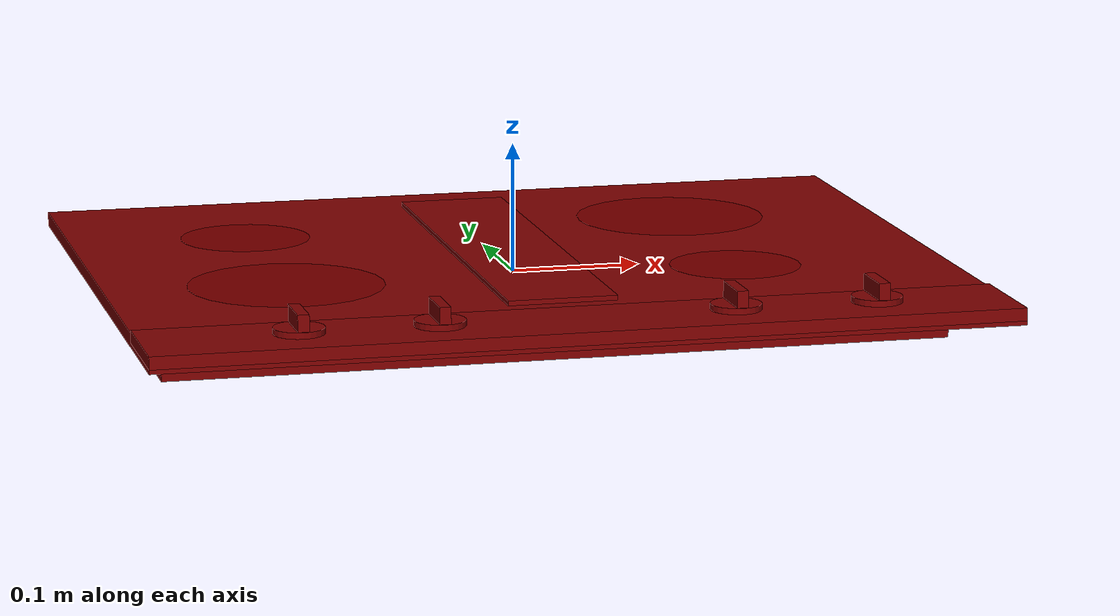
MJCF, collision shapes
<?xml version='1.0' encoding='UTF-8'?>
<mujoco model="model">
  <option timestep="0.002" gravity="0.0 0.0 -9.81"/>
  <compiler angle="radian"/>
  <asset>
    <mesh file="visuals/knob_front_left.obj" name="knob_front_left_vis"/>
    <mesh file="visuals/knob_front_right.obj" name="knob_front_right_vis"/>
    <mesh file="visuals/knob_rear_left.obj" name="knob_rear_left_vis"/>
    <mesh file="visuals/knob_rear_right.obj" name="knob_rear_right_vis"/>
    <mesh file="visuals/Body001.obj" name="Body001_vis"/>
    <texture file="visuals/T_BC001.png" name="Body001_material" type="2d"/>
    <material name="Body001_material" rgba="1 1 1 1.0" texture="Body001_material" shininess="0.1" specular="6"/>
    <texture file="visuals/T_BC001.png" name="knob_front_left_material" type="2d"/>
    <material name="knob_front_left_material" rgba="1 1 1 1.0" texture="knob_front_left_material" shininess="0.1" specular="6"/>
    <texture file="visuals/T_BC001.png" name="knob_front_right_material" type="2d"/>
    <material name="knob_front_right_material" rgba="1 1 1 1.0" texture="knob_front_right_material" shininess="0.1" specular="6"/>
    <texture file="visuals/T_BC001.png" name="knob_rear_left_material" type="2d"/>
    <material name="knob_rear_left_material" rgba="1 1 1 1.0" texture="knob_rear_left_material" shininess="0.1" specular="6"/>
    <texture file="visuals/T_BC001.png" name="knob_rear_right_material" type="2d"/>
    <material name="knob_rear_right_material" rgba="1 1 1 1.0" texture="knob_rear_right_material" shininess="0.1" specular="6"/>
  </asset>
  <default>
    <default class="visual">
      <geom conaffinity="0" contype="0" group="1" type="mesh"/>
    </default>
    <default class="collision">
      <geom group="0" rgba="0.5 0 0 0.5"/>
    </default>
    <default class="spawn">
      <geom group="0" rgba="1 1 1 0.5" contype="0" conaffinity="0"/>
      <site group="0" rgba="1 1 1 0.5"/>
    </default>
    <default class="region">
      <geom group="1" conaffinity="0" contype="0" rgba="0 1 0 0"/>
    </default>
  </default>
  <worldbody>
    <body>
      <body name="object">
        <geom mesh="Body001_vis" type="mesh" solimp="0.998 0.998 0.001" solref="0.001 1" friction="0.95 0.3 0.1" class="visual" material="Body001_material"/>
        <geom class="collision" type="box" pos="0.00000000 -0.00117319 0.00397475" size="0.32607415318489075 0.26166418194770813 0.005421353038400412" quat="1.0 0.0 0.0 0.0"/>
        <geom class="collision" type="box" pos="-0.00171185 0.03461684 -0.01537802" size="0.30057427287101746 0.20036573708057404 0.015968186780810356" quat="1.0 0.0 0.0 0.0"/>
        <geom class="collision" type="box" pos="0.00000000 -0.22087020 0.00667165" size="0.3260745406150818 0.04196760430932045 0.004831559956073761" quat="1.0 0.0 0.0 0.0"/>
        <geom class="collision" type="box" pos="0.00042191 0.02954312 0.00825668" size="0.04198097065091133 0.18717630207538605 0.004831561353057623" quat="1.0 0.0 0.0 0.0"/>
        <body name="knob_front_left">
          <joint axis="0.0 0.0 1.0" pos="-0.21112597 -0.22184953 0.01846080" limited="true" name="knob_front_left_joint" range="0.0 3.141592653589793" type="hinge" damping="0.2" armature="0.01" frictionloss="1"/>
          <geom mesh="knob_front_left_vis" type="mesh" solimp="0.998 0.998 0.001" solref="0.001 1" friction="0.95 0.3 0.1" class="visual" material="knob_front_left_material"/>
          <geom class="collision" type="box" pos="-0.21099338 -0.22114913 0.02317174" size="0.004272299353033304 0.018434064462780952 0.007038237992674112" quat="1.0 0.0 0.0 0.0" name="knob_front_left_main" friction="100 0.5 0.01"/>
          <geom class="collision" type="cylinder" pos="-0.21097794 -0.22206551 0.01514306" size="0.019143780693411827 0.002330014482140541" quat="1.0 0.0 0.0 0.0" friction="100 0.5 0.01"/>
        </body>
        <body name="knob_front_right">
          <joint axis="0.0 0.0 1.0" pos="0.22323292 -0.22145909 0.01846086" limited="true" name="knob_front_right_joint" range="0.0 3.141592653589793" type="hinge" damping="0.2" armature="0.01" frictionloss="1"/>
          <geom mesh="knob_front_right_vis" type="mesh" solimp="0.998 0.998 0.001" solref="0.001 1" friction="0.95 0.3 0.1" class="visual" material="knob_front_right_material"/>
          <geom class="collision" type="cylinder" pos="0.22345224 -0.22128165 0.01514306" size="0.019143780693411827 0.002330014482140541" quat="1.0 0.0 0.0 0.0" friction="100 0.5 0.01"/>
          <geom class="collision" type="box" pos="0.22343680 -0.22036527 0.02317174" size="0.004272299353033304 0.018434064462780952 0.007038237992674112" quat="1.0 0.0 0.0 0.0" name="knob_front_right_main" friction="100 0.5 0.01"/>
        </body>
        <body name="knob_rear_left">
          <joint axis="0.0 0.0 1.0" pos="-0.10760389 -0.22184923 0.01846086" limited="true" name="knob_rear_left_joint" range="0.0 3.141592653589793" type="hinge" damping="0.2" armature="0.01" frictionloss="1"/>
          <geom mesh="knob_rear_left_vis" type="mesh" solimp="0.998 0.998 0.001" solref="0.001 1" friction="0.95 0.3 0.1" class="visual" material="knob_rear_left_material"/>
          <geom class="collision" type="cylinder" pos="-0.10743938 -0.22206551 0.01514306" size="0.019143780693411827 0.002330014482140541" quat="1.0 0.0 0.0 0.0" friction="100 0.5 0.01"/>
          <geom class="collision" type="box" pos="-0.10745482 -0.22114913 0.02317174" size="0.004272299353033304 0.018434064462780952 0.007038237992674112" quat="1.0 0.0 0.0 0.0" name="knob_rear_left_main" friction="100 0.5 0.01"/>
        </body>
        <body name="knob_rear_right">
          <joint axis="0.0 0.0 1.0" pos="0.11522602 -0.22113422 0.01846086" limited="true" name="knob_rear_right_joint" range="0.0 3.141592653589793" type="hinge" damping="0.2" armature="0.01" frictionloss="1"/>
          <geom mesh="knob_rear_right_vis" type="mesh" solimp="0.998 0.998 0.001" solref="0.001 1" friction="0.95 0.3 0.1" class="visual" material="knob_rear_right_material"/>
          <geom class="collision" type="cylinder" pos="0.11509165 -0.22128165 0.01514306" size="0.019143780693411827 0.002330014482140541" quat="1.0 0.0 0.0 0.0" friction="100 0.5 0.01"/>
          <geom class="collision" type="box" pos="0.11507621 -0.22036527 0.02317174" size="0.004272299353033304 0.018434064462780952 0.007038237992674112" quat="1.0 0.0 0.0 0.0" name="knob_rear_right_main" friction="100 0.5 0.01"/>
        </body>
        <site type="cylinder" rgba="0.5 0 0 0.5" size="0.05123347416520119 0.0001" pos="-0.18810354 0.12305204 0.00988148" name="burner_on_rear_left"/>
        <site type="cylinder" rgba="0.5 0 0 0.5" size="0.07512199133634567 0.0001" pos="-0.18823606 -0.05182916 0.01002339" name="burner_on_front_left"/>
        <site type="cylinder" rgba="0.5 0 0 0.5" size="0.05069594457745552 0.0001" pos="0.16078307 -0.06280787 0.01002339" name="burner_on_front_right"/>
        <site type="cylinder" rgba="0.5 0 0 0.5" size="0.07534227520227432 0.0001" pos="0.16070370 0.12535329 0.01002339" name="burner_on_rear_right"/>
        <site name="burner_rear_left_place_site" type="cylinder" rgba="0.5 0 0 0" size="0.05123347416520119 4.999999873689376e-05" pos="-0.18810354 0.12305204 0.00988148"/>
        <site name="burner_front_left_place_site" type="cylinder" rgba="0.5 0 0 0" size="0.07512199133634567 4.999999873689376e-05" pos="-0.18823606 -0.05182916 0.01002339"/>
        <site name="burner_front_right_place_site" type="cylinder" rgba="0.5 0 0 0" size="0.05069594457745552 4.999999873689376e-05" pos="0.16078307 -0.06280787 0.01002339"/>
        <site name="burner_rear_right_place_site" type="cylinder" rgba="0.5 0 0 0" size="0.07534227520227432 4.999999873689376e-05" pos="0.16070370 0.12535329 0.01002339"/>
        <geom class="region" name="reg_main" type="box" pos="0.0 0.0 -0.009288584999999999" size="0.3270746 0.2638378 0.021906925"/>
      </body>
    </body>
  </worldbody>
  <actuator>
    <motor name="knob_front_left_joint_actuator" joint="knob_front_left_joint" gear="10"/>
    <motor name="knob_front_right_joint_actuator" joint="knob_front_right_joint" gear="10"/>
    <motor name="knob_rear_left_joint_actuator" joint="knob_rear_left_joint" gear="10"/>
    <motor name="knob_rear_right_joint_actuator" joint="knob_rear_right_joint" gear="10"/>
  </actuator>
</mujoco>
